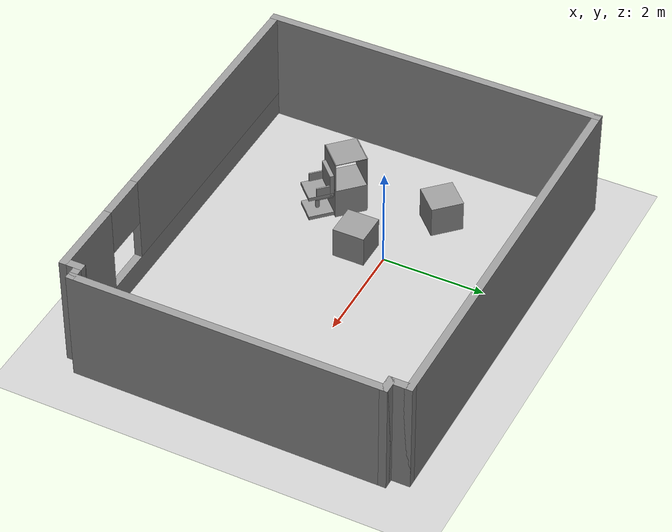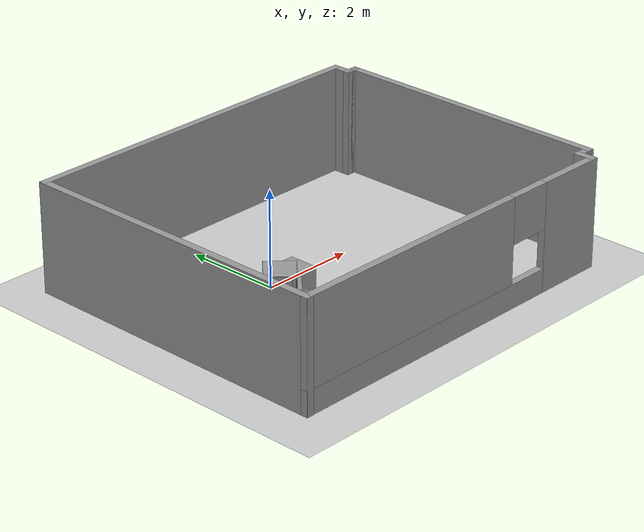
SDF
<sdf version="1.7">
 <world name="default">
  <model name="ground_plane">
   <static>1</static>
   <link name="link">
    <collision name="collision">
     <geometry><plane><normal>0 0 1</normal><size>100 100</size></plane></geometry>
     <surface>
      <contact><collide_bitmask>65535</collide_bitmask></contact>
      <friction><ode><mu>100</mu><mu2>50</mu2></ode></friction>
     </surface>
    </collision>
    <visual name="visual">
     <cast_shadows>0</cast_shadows>
     <geometry><plane><normal>0 0 1</normal><size>100 100</size></plane></geometry>
     <material>
      <script><uri>file://media/materials/scripts/gazebo.material</uri><name>Gazebo/Grey</name></script>
     </material>
    </visual>
   </link>
  </model>
  <model name="room_model">
   <pose>0.214717 -0.451308 0 0 -0 3.14159</pose>
   <link name="Wall_53">
    <pose>-0.681 3.259 0 0 -0 0</pose>
    <visual name="Wall_53_Visual_0">
     <pose>-3.1365 0 1.1235 0 -0 0</pose>
     <geometry><box><size>1.499 0.15 2.247</size></box></geometry>
     <material>
      <script><uri>file://media/materials/scripts/gazebo.material</uri><name>Gazebo/Grey</name></script>
      <ambient>1 1 1 1</ambient>
     </material>
     <meta><layer>0</layer></meta>
    </visual>
    <collision name="Wall_53_Collision_0">
     <geometry><box><size>1.499 0.15 2.247</size></box></geometry>
     <pose>-3.1365 0 1.1235 0 -0 0</pose>
    </collision>
    <visual name="Wall_53_Visual_1">
     <pose>0.7495 0 0.25 0 -0 0</pose>
     <geometry><box><size>6.273 0.15 0.5</size></box></geometry>
     <material>
      <script><uri>file://media/materials/scripts/gazebo.material</uri><name>Gazebo/Grey</name></script>
      <ambient>1 1 1 1</ambient>
     </material>
     <meta><layer>0</layer></meta>
    </visual>
    <collision name="Wall_53_Collision_1">
     <geometry><box><size>6.273 0.15 0.5</size></box></geometry>
     <pose>0.7495 0 0.25 0 -0 0</pose>
    </collision>
    <visual name="Wall_53_Visual_2">
     <pose>1.1995 0 1.3735 0 -0 0</pose>
     <geometry><box><size>5.373 0.15 1.747</size></box></geometry>
     <material>
      <script><uri>file://media/materials/scripts/gazebo.material</uri><name>Gazebo/Grey</name></script>
      <ambient>1 1 1 1</ambient>
     </material>
     <meta><layer>0</layer></meta>
    </visual>
    <collision name="Wall_53_Collision_2">
     <geometry><box><size>5.373 0.15 1.747</size></box></geometry>
     <pose>1.1995 0 1.3735 0 -0 0</pose>
    </collision>
    <visual name="Wall_53_Visual_3">
     <pose>-1.937 0 1.7735 0 -0 0</pose>
     <geometry><box><size>0.9 0.15 0.947</size></box></geometry>
     <material>
      <script><uri>file://media/materials/scripts/gazebo.material</uri><name>Gazebo/Grey</name></script>
      <ambient>1 1 1 1</ambient>
     </material>
     <meta><layer>0</layer></meta>
    </visual>
    <collision name="Wall_53_Collision_3">
     <geometry><box><size>0.9 0.15 0.947</size></box></geometry>
     <pose>-1.937 0 1.7735 0 -0 0</pose>
    </collision>
   </link>
   <link name="Wall_59">
    <collision name="Wall_59_Collision">
     <geometry><box><size>7.835 0.15 2.247</size></box></geometry>
     <pose>0 0 1.1235 0 -0 0</pose>
    </collision>
    <visual name="Wall_59_Visual">
     <pose>0 0 1.1235 0 -0 0</pose>
     <geometry><box><size>7.835 0.15 2.247</size></box></geometry>
     <material>
      <script><uri>file://media/materials/scripts/gazebo.material</uri><name>Gazebo/Grey</name></script>
      <ambient>1 1 1 1</ambient>
     </material>
     <meta><layer>0</layer></meta>
    </visual>
    <pose>-0.7125 -3.265 0 0 -0 3.14159</pose>
   </link>
   <link name="Wall_61">
    <collision name="Wall_61_Collision">
     <geometry><box><size>0.5 0.15 2.247</size></box></geometry>
     <pose>0 0 1.1235 0 -0 0</pose>
    </collision>
    <visual name="Wall_61_Visual">
     <pose>0 0 1.1235 0 -0 0</pose>
     <geometry><box><size>0.5 0.15 2.247</size></box></geometry>
     <material>
      <script><uri>file://media/materials/scripts/gazebo.material</uri><name>Gazebo/Grey</name></script>
      <ambient>1 1 1 1</ambient>
     </material>
     <meta><layer>0</layer></meta>
    </visual>
    <pose>-4.555 -3.09 0 0 -0 1.5708</pose>
   </link>
   <link name="Wall_63">
    <collision name="Wall_63_Collision">
     <geometry><box><size>0.352 0.15 2.247</size></box></geometry>
     <pose>0 0 1.1235 0 -0 0</pose>
    </collision>
    <visual name="Wall_63_Visual">
     <pose>0 0 1.1235 0 -0 0</pose>
     <geometry><box><size>0.352 0.15 2.247</size></box></geometry>
     <material>
      <script><uri>file://media/materials/scripts/gazebo.material</uri><name>Gazebo/Grey</name></script>
      <ambient>1 1 1 1</ambient>
     </material>
     <meta><layer>0</layer></meta>
    </visual>
    <pose>-4.656 -2.915 0 0 -0 3.14159</pose>
   </link>
   <link name="Wall_68">
    <collision name="Wall_68_Collision">
     <geometry><box><size>6.032 0.15 2.247</size></box></geometry>
     <pose>0 0 1.1235 0 -0 0</pose>
    </collision>
    <visual name="Wall_68_Visual">
     <pose>0 0 1.1235 0 -0 0</pose>
     <geometry><box><size>6.032 0.15 2.247</size></box></geometry>
     <material>
      <script><uri>file://media/materials/scripts/gazebo.material</uri><name>Gazebo/Grey</name></script>
      <ambient>1 1 1 1</ambient>
     </material>
     <meta><layer>0</layer></meta>
    </visual>
    <pose>-4.757 0.026 0 0 -0 1.5708</pose>
   </link>
   <link name="Wall_70">
    <collision name="Wall_70_Collision">
     <geometry><box><size>0.416 0.15 2.247</size></box></geometry>
     <pose>0 0 1.1235 0 -0 0</pose>
    </collision>
    <visual name="Wall_70_Visual">
     <pose>0 0 1.1235 0 -0 0</pose>
     <geometry><box><size>0.416 0.15 2.247</size></box></geometry>
     <material>
      <script><uri>file://media/materials/scripts/gazebo.material</uri><name>Gazebo/Grey</name></script>
      <ambient>1 1 1 1</ambient>
     </material>
     <meta><layer>0</layer></meta>
    </visual>
    <pose>-4.624 2.967 0 0 -0 0</pose>
   </link>
   <link name="Wall_71">
    <collision name="Wall_71_Collision">
     <geometry><box><size>0.397 0.15 2.247</size></box></geometry>
     <pose>0 0 1.1235 0 -0 0</pose>
    </collision>
    <visual name="Wall_71_Visual">
     <pose>0 0 1.1235 0 -0 0</pose>
     <geometry><box><size>0.397 0.15 2.247</size></box></geometry>
     <material>
      <script><uri>file://media/materials/scripts/gazebo.material</uri><name>Gazebo/Grey</name></script>
      <ambient>1 1 1 1</ambient>
     </material>
     <meta><layer>0</layer></meta>
    </visual>
    <pose>-4.491 3.0905 0 0 -0 1.5708</pose>
   </link>
   <link name="Wall_75">
    <collision name="Wall_75_Collision">
     <geometry><box><size>6.68 0.15 2.247</size></box></geometry>
     <pose>0 0 1.1235 0 -0 0</pose>
    </collision>
    <visual name="Wall_75_Visual">
     <pose>0 0 1.1235 0 -0 0</pose>
     <geometry><box><size>6.68 0.15 2.247</size></box></geometry>
     <material>
      <script><uri>file://media/materials/scripts/gazebo.material</uri><name>Gazebo/Grey</name></script>
      <ambient>1 1 1 1</ambient>
     </material>
     <meta><layer>0</layer></meta>
    </visual>
    <pose>3.13 0 0 0 -0 1.5708</pose>
   </link>
   <static>1</static>
  </model>
  <model name="0.6223_cube">
   <link name="link">
    <inertial>
     <mass>1</mass>
     <inertia>
      <ixx>0.166667</ixx>
      <ixy>0</ixy>
      <ixz>0</ixz>
      <iyy>0.166667</iyy>
      <iyz>0</iyz>
      <izz>0.166667</izz>
     </inertia>
    </inertial>
    <visual name="visual">
     <geometry><box><size>0.6223 0.6223 0.6223</size></box></geometry>
     <material>
      <script><name>Gazebo/Grey</name><uri>file://media/materials/scripts/gazebo.material</uri></script>
      <shader type="pixel"><normal_map>__default__</normal_map></shader>
      <ambient>0.3 0.3 0.3 1</ambient>
      <diffuse>0.7 0.7 0.7 1</diffuse>
      <specular>0.01 0.01 0.01 1</specular>
      <emissive>0 0 0 1</emissive>
     </material>
    </visual>
    <collision name="collision">
     <geometry><box><size>0.6223 0.6223 0.6223</size></box></geometry>
     <surface>
      <friction>
       <ode><mu>1</mu><mu2>1</mu2><fdir1>0 0 0</fdir1><slip1>0</slip1><slip2>0</slip2></ode>
       <torsional>
        <coefficient>1</coefficient>
        <patch_radius>0</patch_radius>
        <surface_radius>0</surface_radius>
        <use_patch_radius>1</use_patch_radius>
        <ode><slip>0</slip></ode>
       </torsional>
      </friction>
      <bounce><restitution_coefficient>0</restitution_coefficient><threshold>1e+06</threshold></bounce>
      <contact>
       <collide_without_contact>0</collide_without_contact>
       <collide_without_contact_bitmask>1</collide_without_contact_bitmask>
       <collide_bitmask>1</collide_bitmask>
       <ode>
        <soft_cfm>0</soft_cfm>
        <soft_erp>0.2</soft_erp>
        <kp>1e+13</kp>
        <kd>1</kd>
        <max_vel>0.01</max_vel>
        <min_depth>0</min_depth>
       </ode>
       <bullet>
        <split_impulse>1</split_impulse>
        <split_impulse_penetration_threshold>-0.01</split_impulse_penetration_threshold>
        <soft_cfm>0</soft_cfm>
        <soft_erp>0.2</soft_erp>
        <kp>1e+13</kp>
        <kd>1</kd>
       </bullet>
      </contact>
     </surface>
    </collision>
   </link>
   <static>0</static>
   <pose>0.000692 -0.556433 0.31115 0 -0 0</pose>
  </model>
  <model name="0.6223_cube_0">
   <link name="link">
    <inertial>
     <mass>1</mass>
     <inertia>
      <ixx>0.166667</ixx>
      <ixy>0</ixy>
      <ixz>0</ixz>
      <iyy>0.166667</iyy>
      <iyz>0</iyz>
      <izz>0.166667</izz>
     </inertia>
    </inertial>
    <visual name="visual">
     <geometry><box><size>0.6223 0.6223 0.6223</size></box></geometry>
     <material>
      <script><name>Gazebo/Grey</name><uri>file://media/materials/scripts/gazebo.material</uri></script>
      <shader type="pixel"><normal_map>__default__</normal_map></shader>
      <ambient>0.3 0.3 0.3 1</ambient>
      <diffuse>0.7 0.7 0.7 1</diffuse>
      <specular>0.01 0.01 0.01 1</specular>
      <emissive>0 0 0 1</emissive>
     </material>
    </visual>
    <collision name="collision">
     <geometry><box><size>0.6223 0.6223 0.6223</size></box></geometry>
     <surface>
      <friction>
       <ode><mu>1</mu><mu2>1</mu2><fdir1>0 0 0</fdir1><slip1>0</slip1><slip2>0</slip2></ode>
       <torsional>
        <coefficient>1</coefficient>
        <patch_radius>0</patch_radius>
        <surface_radius>0</surface_radius>
        <use_patch_radius>1</use_patch_radius>
        <ode><slip>0</slip></ode>
       </torsional>
      </friction>
      <bounce><restitution_coefficient>0</restitution_coefficient><threshold>1e+06</threshold></bounce>
      <contact>
       <collide_without_contact>0</collide_without_contact>
       <collide_without_contact_bitmask>1</collide_without_contact_bitmask>
       <collide_bitmask>1</collide_bitmask>
       <ode>
        <soft_cfm>0</soft_cfm>
        <soft_erp>0.2</soft_erp>
        <kp>1e+13</kp>
        <kd>1</kd>
        <max_vel>0.01</max_vel>
        <min_depth>0</min_depth>
       </ode>
       <bullet>
        <split_impulse>1</split_impulse>
        <split_impulse_penetration_threshold>-0.01</split_impulse_penetration_threshold>
        <soft_cfm>0</soft_cfm>
        <soft_erp>0.2</soft_erp>
        <kp>1e+13</kp>
        <kd>1</kd>
       </bullet>
      </contact>
     </surface>
    </collision>
   </link>
   <static>0</static>
   <pose>-1.40869 0.495475 0.31115 0 -0 0.785397</pose>
  </model>
  <model name="tunnel_box">
   <link name="link_0">
    <inertial>
     <mass>1</mass>
     <inertia>
      <ixx>0.166667</ixx>
      <ixy>0</ixy>
      <ixz>0</ixz>
      <iyy>0.166667</iyy>
      <iyz>0</iyz>
      <izz>0.166667</izz>
     </inertia>
    </inertial>
    <pose>-0.005001 0.001033 -0.541782 0 -0 0</pose>
    <visual name="visual">
     <geometry><box><size>0.6223 0.6223 0.6223</size></box></geometry>
     <material>
      <lighting>1</lighting>
      <script><uri>file://media/materials/scripts/gazebo.material</uri><name>Gazebo/Grey</name></script>
      <shader type="pixel"><normal_map>__default__</normal_map></shader>
      <ambient>0.3 0.3 0.3 1</ambient>
      <diffuse>0.7 0.7 0.7 1</diffuse>
      <specular>0.01 0.01 0.01 1</specular>
      <emissive>0 0 0 1</emissive>
     </material>
    </visual>
    <collision name="collision">
     <geometry><box><size>0.6223 0.6223 0.6223</size></box></geometry>
     <surface>
      <friction>
       <ode><mu>1</mu><mu2>1</mu2><fdir1>0 0 0</fdir1><slip1>0</slip1><slip2>0</slip2></ode>
       <torsional>
        <coefficient>1</coefficient>
        <patch_radius>0</patch_radius>
        <surface_radius>0</surface_radius>
        <use_patch_radius>1</use_patch_radius>
        <ode><slip>0</slip></ode>
       </torsional>
      </friction>
      <bounce><restitution_coefficient>0</restitution_coefficient><threshold>1e+06</threshold></bounce>
      <contact>
       <collide_without_contact>0</collide_without_contact>
       <collide_without_contact_bitmask>1</collide_without_contact_bitmask>
       <collide_bitmask>1</collide_bitmask>
       <ode>
        <soft_cfm>0</soft_cfm>
        <soft_erp>0.2</soft_erp>
        <kp>1e+13</kp>
        <kd>1</kd>
        <max_vel>0.01</max_vel>
        <min_depth>0</min_depth>
       </ode>
       <bullet>
        <split_impulse>1</split_impulse>
        <split_impulse_penetration_threshold>-0.01</split_impulse_penetration_threshold>
        <soft_cfm>0</soft_cfm>
        <soft_erp>0.2</soft_erp>
        <kp>1e+13</kp>
        <kd>1</kd>
       </bullet>
      </contact>
     </surface>
    </collision>
   </link>
   <link name="link_1">
    <inertial>
     <mass>1</mass>
     <inertia>
      <ixx>0.166667</ixx>
      <ixy>0</ixy>
      <ixz>0</ixz>
      <iyy>0.166667</iyy>
      <iyz>0</iyz>
      <izz>0.166667</izz>
     </inertia>
    </inertial>
    <pose>0.298277 0.001033 0.080518 0 -0 0</pose>
    <visual name="visual">
     <geometry><box><size>0.014287 0.6223 0.6223</size></box></geometry>
     <material>
      <lighting>1</lighting>
      <script><uri>file://media/materials/scripts/gazebo.material</uri><name>Gazebo/Grey</name></script>
      <shader type="pixel"><normal_map>__default__</normal_map></shader>
      <ambient>0.3 0.3 0.3 1</ambient>
      <diffuse>0.7 0.7 0.7 1</diffuse>
      <specular>0.01 0.01 0.01 1</specular>
      <emissive>0 0 0 1</emissive>
     </material>
    </visual>
    <collision name="collision">
     <geometry><box><size>0.014287 0.6223 0.6223</size></box></geometry>
     <surface>
      <friction>
       <ode><mu>1</mu><mu2>1</mu2><fdir1>0 0 0</fdir1><slip1>0</slip1><slip2>0</slip2></ode>
       <torsional>
        <coefficient>1</coefficient>
        <patch_radius>0</patch_radius>
        <surface_radius>0</surface_radius>
        <use_patch_radius>1</use_patch_radius>
        <ode><slip>0</slip></ode>
       </torsional>
      </friction>
      <bounce><restitution_coefficient>0</restitution_coefficient><threshold>1e+06</threshold></bounce>
      <contact>
       <collide_without_contact>0</collide_without_contact>
       <collide_without_contact_bitmask>1</collide_without_contact_bitmask>
       <collide_bitmask>1</collide_bitmask>
       <ode>
        <soft_cfm>0</soft_cfm>
        <soft_erp>0.2</soft_erp>
        <kp>1e+13</kp>
        <kd>1</kd>
        <max_vel>0.01</max_vel>
        <min_depth>0</min_depth>
       </ode>
       <bullet>
        <split_impulse>1</split_impulse>
        <split_impulse_penetration_threshold>-0.01</split_impulse_penetration_threshold>
        <soft_cfm>0</soft_cfm>
        <soft_erp>0.2</soft_erp>
        <kp>1e+13</kp>
        <kd>1</kd>
       </bullet>
      </contact>
     </surface>
    </collision>
   </link>
   <link name="link_1_clone">
    <inertial>
     <mass>1</mass>
     <inertia>
      <ixx>0.166667</ixx>
      <ixy>0</ixy>
      <ixz>0</ixz>
      <iyy>0.166667</iyy>
      <iyz>0</iyz>
      <izz>0.166667</izz>
     </inertia>
    </inertial>
    <pose>-0.309931 0.001033 0.080518 0 -0 0</pose>
    <visual name="visual">
     <geometry><box><size>0.014287 0.6223 0.6223</size></box></geometry>
     <material>
      <lighting>1</lighting>
      <script><uri>file://media/materials/scripts/gazebo.material</uri><name>Gazebo/Grey</name></script>
      <shader type="pixel"><normal_map>__default__</normal_map></shader>
      <ambient>0.3 0.3 0.3 1</ambient>
      <diffuse>0.7 0.7 0.7 1</diffuse>
      <specular>0.01 0.01 0.01 1</specular>
      <emissive>0 0 0 1</emissive>
     </material>
    </visual>
    <collision name="collision">
     <geometry><box><size>0.014287 0.6223 0.6223</size></box></geometry>
     <surface>
      <friction>
       <ode><mu>1</mu><mu2>1</mu2><fdir1>0 0 0</fdir1><slip1>0</slip1><slip2>0</slip2></ode>
       <torsional>
        <coefficient>1</coefficient>
        <patch_radius>0</patch_radius>
        <surface_radius>0</surface_radius>
        <use_patch_radius>1</use_patch_radius>
        <ode><slip>0</slip></ode>
       </torsional>
      </friction>
      <bounce><restitution_coefficient>0</restitution_coefficient><threshold>1e+06</threshold></bounce>
      <contact>
       <collide_without_contact>0</collide_without_contact>
       <collide_without_contact_bitmask>1</collide_without_contact_bitmask>
       <collide_bitmask>1</collide_bitmask>
       <ode>
        <soft_cfm>0</soft_cfm>
        <soft_erp>0.2</soft_erp>
        <kp>1e+13</kp>
        <kd>1</kd>
        <max_vel>0.01</max_vel>
        <min_depth>0</min_depth>
       </ode>
       <bullet>
        <split_impulse>1</split_impulse>
        <split_impulse_penetration_threshold>-0.01</split_impulse_penetration_threshold>
        <soft_cfm>0</soft_cfm>
        <soft_erp>0.2</soft_erp>
        <kp>1e+13</kp>
        <kd>1</kd>
       </bullet>
      </contact>
     </surface>
    </collision>
   </link>
   <link name="link_1_clone_clone">
    <inertial>
     <mass>1</mass>
     <inertia>
      <ixx>0.166667</ixx>
      <ixy>0</ixy>
      <ixz>0</ixz>
      <iyy>0.166667</iyy>
      <iyz>0</iyz>
      <izz>0.166667</izz>
     </inertia>
    </inertial>
    <pose>-0.004408 -0.003097 0.380894 3.14159 1.56382 3.14159</pose>
    <visual name="visual">
     <geometry><box><size>0.014287 0.6223 0.6223</size></box></geometry>
     <material>
      <lighting>1</lighting>
      <script><uri>file://media/materials/scripts/gazebo.material</uri><name>Gazebo/Grey</name></script>
      <shader type="pixel"><normal_map>__default__</normal_map></shader>
      <ambient>0.3 0.3 0.3 1</ambient>
      <diffuse>0.7 0.7 0.7 1</diffuse>
      <specular>0.01 0.01 0.01 1</specular>
      <emissive>0 0 0 1</emissive>
     </material>
    </visual>
    <collision name="collision">
     <geometry><box><size>0.014287 0.6223 0.6223</size></box></geometry>
     <surface>
      <friction>
       <ode><mu>1</mu><mu2>1</mu2><fdir1>0 0 0</fdir1><slip1>0</slip1><slip2>0</slip2></ode>
       <torsional>
        <coefficient>1</coefficient>
        <patch_radius>0</patch_radius>
        <surface_radius>0</surface_radius>
        <use_patch_radius>1</use_patch_radius>
        <ode><slip>0</slip></ode>
       </torsional>
      </friction>
      <bounce><restitution_coefficient>0</restitution_coefficient><threshold>1e+06</threshold></bounce>
      <contact>
       <collide_without_contact>0</collide_without_contact>
       <collide_without_contact_bitmask>1</collide_without_contact_bitmask>
       <collide_bitmask>1</collide_bitmask>
       <ode>
        <soft_cfm>0</soft_cfm>
        <soft_erp>0.2</soft_erp>
        <kp>1e+13</kp>
        <kd>1</kd>
        <max_vel>0.01</max_vel>
        <min_depth>0</min_depth>
       </ode>
       <bullet>
        <split_impulse>1</split_impulse>
        <split_impulse_penetration_threshold>-0.01</split_impulse_penetration_threshold>
        <soft_cfm>0</soft_cfm>
        <soft_erp>0.2</soft_erp>
        <kp>1e+13</kp>
        <kd>1</kd>
       </bullet>
      </contact>
     </surface>
    </collision>
   </link>
   <joint name="link_0_JOINT_0" type="fixed">
    <parent>link_0</parent>
    <child>link_1_clone</child>
    <physics>
     <ode><limit><cfm>0</cfm><erp>0.2</erp></limit><suspension><cfm>0</cfm><erp>0.2</erp></suspension></ode>
    </physics>
   </joint>
   <joint name="link_0_JOINT_1" type="fixed">
    <parent>link_0</parent>
    <child>link_1</child>
    <physics>
     <ode><limit><cfm>0</cfm><erp>0.2</erp></limit><suspension><cfm>0</cfm><erp>0.2</erp></suspension></ode>
    </physics>
   </joint>
   <joint name="link_0_JOINT_2" type="fixed">
    <parent>link_0</parent>
    <child>link_1_clone_clone</child>
    <physics>
     <ode><limit><cfm>0</cfm><erp>0.2</erp></limit><suspension><cfm>0</cfm><erp>0.2</erp></suspension></ode>
    </physics>
   </joint>
   <static>0</static>
   <pose>-1.076 -1.30191 0.852932 0 -1e-06 -0.785552</pose>
  </model>
  <model name="green_roll_chair">
   <link name="link_0_clone">
    <inertial>
     <mass>0.0217755</mass>
     <inertia>
      <ixx>0.00066746</ixx>
      <ixy>0</ixy>
      <ixz>0</ixz>
      <iyy>0.0007761</iyy>
      <iyz>0</iyz>
      <izz>0.00143245</izz>
     </inertia>
    </inertial>
    <pose>0 -0.058982 -0.395662 0 -0 0</pose>
    <visual name="visual">
     <geometry><box><size>0.4826 0.4826 0.0762</size></box></geometry>
     <material>
      <lighting>1</lighting>
      <script><uri>file://media/materials/scripts/gazebo.material</uri><name>Gazebo/Grey</name></script>
      <shader type="pixel"><normal_map>__default__</normal_map></shader>
      <ambient>0.3 0.3 0.3 1</ambient>
      <diffuse>0.7 0.7 0.7 1</diffuse>
      <specular>0.01 0.01 0.01 1</specular>
      <emissive>0 0 0 1</emissive>
     </material>
    </visual>
    <collision name="collision">
     <geometry><box><size>0.4826 0.4826 0.0762</size></box></geometry>
     <surface>
      <friction>
       <ode><mu>1</mu><mu2>1</mu2><fdir1>0 0 0</fdir1><slip1>0</slip1><slip2>0</slip2></ode>
       <torsional>
        <coefficient>1</coefficient>
        <patch_radius>0</patch_radius>
        <surface_radius>0</surface_radius>
        <use_patch_radius>1</use_patch_radius>
        <ode><slip>0</slip></ode>
       </torsional>
      </friction>
      <bounce><restitution_coefficient>0</restitution_coefficient><threshold>1e+06</threshold></bounce>
      <contact>
       <collide_without_contact>0</collide_without_contact>
       <collide_without_contact_bitmask>1</collide_without_contact_bitmask>
       <collide_bitmask>1</collide_bitmask>
       <ode>
        <soft_cfm>0</soft_cfm>
        <soft_erp>0.2</soft_erp>
        <kp>1e+13</kp>
        <kd>1</kd>
        <max_vel>0.01</max_vel>
        <min_depth>0</min_depth>
       </ode>
       <bullet>
        <split_impulse>1</split_impulse>
        <split_impulse_penetration_threshold>-0.01</split_impulse_penetration_threshold>
        <soft_cfm>0</soft_cfm>
        <soft_erp>0.2</soft_erp>
        <kp>1e+13</kp>
        <kd>1</kd>
       </bullet>
      </contact>
     </surface>
    </collision>
   </link>
   <link name="link_0_clone_0">
    <inertial>
     <mass>0.0217755</mass>
     <inertia>
      <ixx>0.00066746</ixx>
      <ixy>0</ixy>
      <ixz>0</ixz>
      <iyy>0.0007761</iyy>
      <iyz>0</iyz>
      <izz>0.00143245</izz>
     </inertia>
    </inertial>
    <pose>-0 -0.058982 0.060653 0 -0 0</pose>
    <visual name="visual">
     <geometry><box><size>0.4826 0.4826 0.0762</size></box></geometry>
     <material>
      <lighting>1</lighting>
      <script><uri>file://media/materials/scripts/gazebo.material</uri><name>Gazebo/Grey</name></script>
      <shader type="pixel"><normal_map>__default__</normal_map></shader>
      <ambient>0.3 0.3 0.3 1</ambient>
      <diffuse>0.7 0.7 0.7 1</diffuse>
      <specular>0.01 0.01 0.01 1</specular>
      <emissive>0 0 0 1</emissive>
     </material>
    </visual>
    <collision name="collision">
     <geometry><box><size>0.4826 0.4826 0.0762</size></box></geometry>
     <surface>
      <friction>
       <ode><mu>1</mu><mu2>1</mu2><fdir1>0 0 0</fdir1><slip1>0</slip1><slip2>0</slip2></ode>
       <torsional>
        <coefficient>1</coefficient>
        <patch_radius>0</patch_radius>
        <surface_radius>0</surface_radius>
        <use_patch_radius>1</use_patch_radius>
        <ode><slip>0</slip></ode>
       </torsional>
      </friction>
      <bounce><restitution_coefficient>0</restitution_coefficient><threshold>1e+06</threshold></bounce>
      <contact>
       <collide_without_contact>0</collide_without_contact>
       <collide_without_contact_bitmask>1</collide_without_contact_bitmask>
       <collide_bitmask>1</collide_bitmask>
       <ode>
        <soft_cfm>0</soft_cfm>
        <soft_erp>0.2</soft_erp>
        <kp>1e+13</kp>
        <kd>1</kd>
        <max_vel>0.01</max_vel>
        <min_depth>0</min_depth>
       </ode>
       <bullet>
        <split_impulse>1</split_impulse>
        <split_impulse_penetration_threshold>-0.01</split_impulse_penetration_threshold>
        <soft_cfm>0</soft_cfm>
        <soft_erp>0.2</soft_erp>
        <kp>1e+13</kp>
        <kd>1</kd>
       </bullet>
      </contact>
     </surface>
    </collision>
   </link>
   <link name="link_0_clone_0_clone">
    <inertial>
     <mass>0.0217755</mass>
     <inertia>
      <ixx>0.00066746</ixx>
      <ixy>0</ixy>
      <ixz>0</ixz>
      <iyy>0.0007761</iyy>
      <iyz>0</iyz>
      <izz>0.00143245</izz>
     </inertia>
    </inertial>
    <pose>-0 0.147721 0.265078 1.56669 -0 0</pose>
    <visual name="visual">
     <geometry><box><size>0.4826 0.4826 0.0762</size></box></geometry>
     <material>
      <lighting>1</lighting>
      <script><uri>file://media/materials/scripts/gazebo.material</uri><name>Gazebo/Grey</name></script>
      <shader type="pixel"><normal_map>__default__</normal_map></shader>
      <ambient>0.3 0.3 0.3 1</ambient>
      <diffuse>0.7 0.7 0.7 1</diffuse>
      <specular>0.01 0.01 0.01 1</specular>
      <emissive>0 0 0 1</emissive>
     </material>
    </visual>
    <collision name="collision">
     <geometry><box><size>0.4826 0.4826 0.0762</size></box></geometry>
     <surface>
      <friction>
       <ode><mu>1</mu><mu2>1</mu2><fdir1>0 0 0</fdir1><slip1>0</slip1><slip2>0</slip2></ode>
       <torsional>
        <coefficient>1</coefficient>
        <patch_radius>0</patch_radius>
        <surface_radius>0</surface_radius>
        <use_patch_radius>1</use_patch_radius>
        <ode><slip>0</slip></ode>
       </torsional>
      </friction>
      <bounce><restitution_coefficient>0</restitution_coefficient><threshold>1e+06</threshold></bounce>
      <contact>
       <collide_without_contact>0</collide_without_contact>
       <collide_without_contact_bitmask>1</collide_without_contact_bitmask>
       <collide_bitmask>1</collide_bitmask>
       <ode>
        <soft_cfm>0</soft_cfm>
        <soft_erp>0.2</soft_erp>
        <kp>1e+13</kp>
        <kd>1</kd>
        <max_vel>0.01</max_vel>
        <min_depth>0</min_depth>
       </ode>
       <bullet>
        <split_impulse>1</split_impulse>
        <split_impulse_penetration_threshold>-0.01</split_impulse_penetration_threshold>
        <soft_cfm>0</soft_cfm>
        <soft_erp>0.2</soft_erp>
        <kp>1e+13</kp>
        <kd>1</kd>
       </bullet>
      </contact>
     </surface>
    </collision>
   </link>
   <link name="link_0_clone_0_clone_clone">
    <inertial>
     <mass>0.00714904</mass>
     <inertia>
      <ixx>3.22e-05</ixx>
      <ixy>0</ixy>
      <ixz>0</ixz>
      <iyy>7.567e-05</iyy>
      <iyz>0</iyz>
      <izz>0.00010096</izz>
     </inertia>
    </inertial>
    <pose>-0.226614 0.014612 0.137546 1.5707 -0 -1.5707</pose>
    <visual name="visual">
     <geometry><box><size>0.3302 0.279401 0.028575</size></box></geometry>
     <material>
      <lighting>1</lighting>
      <script><uri>file://media/materials/scripts/gazebo.material</uri><name>Gazebo/Grey</name></script>
      <shader type="pixel"><normal_map>__default__</normal_map></shader>
      <ambient>0.3 0.3 0.3 1</ambient>
      <diffuse>0.7 0.7 0.7 1</diffuse>
      <specular>0.01 0.01 0.01 1</specular>
      <emissive>0 0 0 1</emissive>
     </material>
    </visual>
    <collision name="collision">
     <geometry><box><size>0.3302 0.279401 0.028575</size></box></geometry>
     <surface>
      <friction>
       <ode><mu>1</mu><mu2>1</mu2><fdir1>0 0 0</fdir1><slip1>0</slip1><slip2>0</slip2></ode>
       <torsional>
        <coefficient>1</coefficient>
        <patch_radius>0</patch_radius>
        <surface_radius>0</surface_radius>
        <use_patch_radius>1</use_patch_radius>
        <ode><slip>0</slip></ode>
       </torsional>
      </friction>
      <bounce><restitution_coefficient>0</restitution_coefficient><threshold>1e+06</threshold></bounce>
      <contact>
       <collide_without_contact>0</collide_without_contact>
       <collide_without_contact_bitmask>1</collide_without_contact_bitmask>
       <collide_bitmask>1</collide_bitmask>
       <ode>
        <soft_cfm>0</soft_cfm>
        <soft_erp>0.2</soft_erp>
        <kp>1e+13</kp>
        <kd>1</kd>
        <max_vel>0.01</max_vel>
        <min_depth>0</min_depth>
       </ode>
       <bullet>
        <split_impulse>1</split_impulse>
        <split_impulse_penetration_threshold>-0.01</split_impulse_penetration_threshold>
        <soft_cfm>0</soft_cfm>
        <soft_erp>0.2</soft_erp>
        <kp>1e+13</kp>
        <kd>1</kd>
       </bullet>
      </contact>
     </surface>
    </collision>
   </link>
   <link name="link_0_clone_0_clone_clone_clone">
    <inertial>
     <mass>0.00714904</mass>
     <inertia>
      <ixx>3.22e-05</ixx>
      <ixy>0</ixy>
      <ixz>0</ixz>
      <iyy>7.567e-05</iyy>
      <iyz>0</iyz>
      <izz>0.00010096</izz>
     </inertia>
    </inertial>
    <pose>0.226614 0.014612 0.137546 1.5707 -0 -1.5707</pose>
    <visual name="visual">
     <geometry><box><size>0.3302 0.279401 0.028575</size></box></geometry>
     <material>
      <lighting>1</lighting>
      <script><uri>file://media/materials/scripts/gazebo.material</uri><name>Gazebo/Grey</name></script>
      <shader type="pixel"><normal_map>__default__</normal_map></shader>
      <ambient>0.3 0.3 0.3 1</ambient>
      <diffuse>0.7 0.7 0.7 1</diffuse>
      <specular>0.01 0.01 0.01 1</specular>
      <emissive>0 0 0 1</emissive>
     </material>
    </visual>
    <collision name="collision">
     <geometry><box><size>0.3302 0.279401 0.028575</size></box></geometry>
     <surface>
      <friction>
       <ode><mu>1</mu><mu2>1</mu2><fdir1>0 0 0</fdir1><slip1>0</slip1><slip2>0</slip2></ode>
       <torsional>
        <coefficient>1</coefficient>
        <patch_radius>0</patch_radius>
        <surface_radius>0</surface_radius>
        <use_patch_radius>1</use_patch_radius>
        <ode><slip>0</slip></ode>
       </torsional>
      </friction>
      <bounce><restitution_coefficient>0</restitution_coefficient><threshold>1e+06</threshold></bounce>
      <contact>
       <collide_without_contact>0</collide_without_contact>
       <collide_without_contact_bitmask>1</collide_without_contact_bitmask>
       <collide_bitmask>1</collide_bitmask>
       <ode>
        <soft_cfm>0</soft_cfm>
        <soft_erp>0.2</soft_erp>
        <kp>1e+13</kp>
        <kd>1</kd>
        <max_vel>0.01</max_vel>
        <min_depth>0</min_depth>
       </ode>
       <bullet>
        <split_impulse>1</split_impulse>
        <split_impulse_penetration_threshold>-0.01</split_impulse_penetration_threshold>
        <soft_cfm>0</soft_cfm>
        <soft_erp>0.2</soft_erp>
        <kp>1e+13</kp>
        <kd>1</kd>
       </bullet>
      </contact>
     </surface>
    </collision>
   </link>
   <link name="link_1">
    <inertial>
     <mass>0.480588</mass>
     <inertia>
      <ixx>0.00942418</ixx>
      <ixy>0</ixy>
      <ixz>0</ixz>
      <iyy>0.00942418</iyy>
      <iyz>0</iyz>
      <izz>0.00034881</izz>
     </inertia>
    </inertial>
    <pose>0 -0.058982 -0.205162 0 -0 0</pose>
    <visual name="visual">
     <geometry><cylinder><radius>0.0381</radius><length>0.480584</length></cylinder></geometry>
     <material>
      <lighting>1</lighting>
      <script><uri>file://media/materials/scripts/gazebo.material</uri><name>Gazebo/Grey</name></script>
      <shader type="pixel"><normal_map>__default__</normal_map></shader>
      <ambient>0.3 0.3 0.3 1</ambient>
      <diffuse>0.7 0.7 0.7 1</diffuse>
      <specular>0.01 0.01 0.01 1</specular>
      <emissive>0 0 0 1</emissive>
     </material>
    </visual>
    <collision name="collision">
     <geometry><cylinder><radius>0.0381</radius><length>0.4445</length></cylinder></geometry>
     <surface>
      <friction>
       <ode><mu>1</mu><mu2>1</mu2><fdir1>0 0 0</fdir1><slip1>0</slip1><slip2>0</slip2></ode>
       <torsional>
        <coefficient>1</coefficient>
        <patch_radius>0</patch_radius>
        <surface_radius>0</surface_radius>
        <use_patch_radius>1</use_patch_radius>
        <ode><slip>0</slip></ode>
       </torsional>
      </friction>
      <bounce><restitution_coefficient>0</restitution_coefficient><threshold>1e+06</threshold></bounce>
      <contact>
       <collide_without_contact>0</collide_without_contact>
       <collide_without_contact_bitmask>1</collide_without_contact_bitmask>
       <collide_bitmask>1</collide_bitmask>
       <ode>
        <soft_cfm>0</soft_cfm>
        <soft_erp>0.2</soft_erp>
        <kp>1e+13</kp>
        <kd>1</kd>
        <max_vel>0.01</max_vel>
        <min_depth>0</min_depth>
       </ode>
       <bullet>
        <split_impulse>1</split_impulse>
        <split_impulse_penetration_threshold>-0.01</split_impulse_penetration_threshold>
        <soft_cfm>0</soft_cfm>
        <soft_erp>0.2</soft_erp>
        <kp>1e+13</kp>
        <kd>1</kd>
       </bullet>
      </contact>
     </surface>
    </collision>
   </link>
   <joint name="link_0_clone_0_JOINT_0" type="fixed">
    <parent>link_0_clone_0</parent>
    <child>link_1</child>
    <physics>
     <ode><limit><cfm>0</cfm><erp>0.2</erp></limit><suspension><cfm>0</cfm><erp>0.2</erp></suspension></ode>
    </physics>
   </joint>
   <joint name="link_0_clone_0_JOINT_2" type="fixed">
    <parent>link_0_clone_0</parent>
    <child>link_0_clone_0_clone</child>
    <physics>
     <ode><limit><cfm>0</cfm><erp>0.2</erp></limit><suspension><cfm>0</cfm><erp>0.2</erp></suspension></ode>
    </physics>
   </joint>
   <joint name="link_0_clone_0_JOINT_3" type="fixed">
    <parent>link_0_clone_0</parent>
    <child>link_0_clone_0_clone_clone</child>
    <physics>
     <ode><limit><cfm>0</cfm><erp>0.2</erp></limit><suspension><cfm>0</cfm><erp>0.2</erp></suspension></ode>
    </physics>
   </joint>
   <joint name="link_0_clone_0_JOINT_4" type="fixed">
    <parent>link_0_clone_0</parent>
    <child>link_0_clone_0_clone_clone_clone</child>
    <physics>
     <ode><limit><cfm>0</cfm><erp>0.2</erp></limit><suspension><cfm>0</cfm><erp>0.2</erp></suspension></ode>
    </physics>
   </joint>
   <joint name="link_0_clone_JOINT_1" type="fixed">
    <parent>link_0_clone</parent>
    <child>link_1</child>
    <physics>
     <ode><limit><cfm>0</cfm><erp>0.2</erp></limit><suspension><cfm>0</cfm><erp>0.2</erp></suspension></ode>
    </physics>
   </joint>
   <static>0</static>
   <pose>-0.724525 -1.64963 0.433759 0 1.3e-05 0.785743</pose>
  </model>
 </world>
</sdf>
